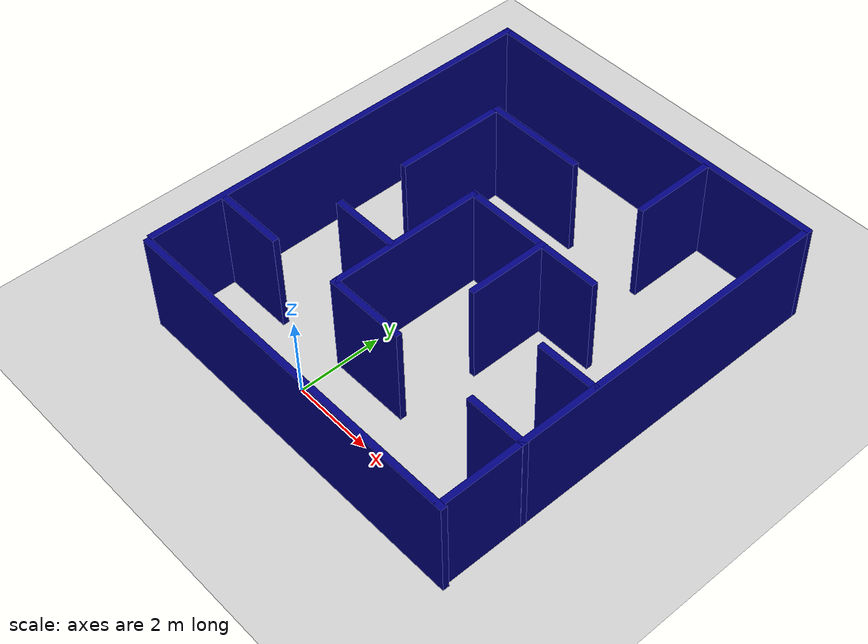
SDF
<sdf version="1.4">
 <world name="default">
  <light name="sun" type="directional">
   <pose>0 0 10 0 -0 0</pose>
   <diffuse>0.8 0.8 0.8 1</diffuse>
   <specular>0.2 0.2 0.2 1</specular>
   <attenuation>
    <range>1000</range>
    <constant>0.9</constant>
    <linear>0.01</linear>
    <quadratic>0.001</quadratic>
   </attenuation>
   <direction>0.5 0.1 -0.9</direction>
  </light>
  <model name="ground_plane">
   <static>1</static>
   <link name="link">
    <collision name="collision">
     <geometry><plane><normal>0 0 1</normal><size>100 100</size></plane></geometry>
     <surface><friction><ode><mu>100</mu><mu2>50</mu2></ode></friction></surface>
    </collision>
    <visual name="visual">
     <cast_shadows>0</cast_shadows>
     <geometry><plane><normal>0 0 1</normal><size>100 100</size></plane></geometry>
     <material>
      <script><uri>file://media/materials/scripts/gazebo.material</uri><name>Gazebo/Grey</name></script>
     </material>
    </visual>
    <velocity_decay><linear>0</linear><angular>0</angular></velocity_decay>
   </link>
  </model>
  <scene><ambient>0.4 0.4 0.4 1</ambient><background>0.7 0.7 0.7 1</background><shadows>0</shadows></scene>
  <physics type="ode">
   <max_step_size>0.01</max_step_size>
   <real_time_factor>1</real_time_factor>
   <real_time_update_rate>0</real_time_update_rate>
   <gravity>0 0 -9.8</gravity>
  </physics>
  <include><uri>model://ComplicatedMaze</uri><pose>1 4 0 0 -0 1.5708</pose></include>
 </world>
</sdf>

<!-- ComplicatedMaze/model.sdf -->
<sdf version='1.6'>
  <model name='ComplicatedMaze'>
    <link name='Wall_0'>
      <pose frame=''>-4.99265 -0.03059 0 0 0 -1.5708</pose>
      <self_collide>0</self_collide>
      <enable_wind>0</enable_wind>
      <kinematic>0</kinematic>
      <visual name='Wall_0_Visual'>
        <pose frame=''>0 0 1.25 0 -0 0</pose>
        <geometry>
          <box>
            <size>9 0.15 2.5</size>
          </box>
        </geometry>
        <material>
          <script>
            <uri>file://media/materials/scripts/gazebo.material</uri>
            <name>Gazebo/Grey</name>
          </script>
          <ambient>0 0 0.498039 1</ambient>
        </material>
        <meta>
          <layer>0</layer>
        </meta>
        <transparency>0</transparency>
        <cast_shadows>1</cast_shadows>
      </visual>
      <collision name='Wall_0_Collision'>
        <laser_retro>0</laser_retro>
        <max_contacts>10</max_contacts>
        <pose frame=''>0 0 1.25 0 -0 0</pose>
        <geometry>
          <box>
            <size>9 0.15 2.5</size>
          </box>
        </geometry>
        <surface>
          <friction>
            <ode>
              <mu>1</mu>
              <mu2>1</mu2>
              <fdir1>0 0 0</fdir1>
              <slip1>0</slip1>
              <slip2>0</slip2>
            </ode>
            <torsional>
              <coefficient>1</coefficient>
              <patch_radius>0</patch_radius>
              <surface_radius>0</surface_radius>
              <use_patch_radius>1</use_patch_radius>
              <ode>
                <slip>0</slip>
              </ode>
            </torsional>
          </friction>
          <bounce>
            <restitution_coefficient>0</restitution_coefficient>
            <threshold>1e+06</threshold>
          </bounce>
          <contact>
            <collide_without_contact>0</collide_without_contact>
            <collide_without_contact_bitmask>1</collide_without_contact_bitmask>
            <collide_bitmask>1</collide_bitmask>
            <ode>
              <soft_cfm>0</soft_cfm>
              <soft_erp>0.2</soft_erp>
              <kp>1e+13</kp>
              <kd>1</kd>
              <max_vel>0.01</max_vel>
              <min_depth>0</min_depth>
            </ode>
            <bullet>
              <split_impulse>1</split_impulse>
              <split_impulse_penetration_threshold>-0.01</split_impulse_penetration_threshold>
              <soft_cfm>0</soft_cfm>
              <soft_erp>0.2</soft_erp>
              <kp>1e+13</kp>
              <kd>1</kd>
            </bullet>
          </contact>
        </surface>
      </collision>
    </link>
    <link name='Wall_11'>
      <pose frame=''>-1.08192 0.977782 0 0 -0 0</pose>
      <self_collide>0</self_collide>
      <enable_wind>0</enable_wind>
      <kinematic>0</kinematic>
      <visual name='Wall_11_Visual'>
        <pose frame=''>0 0 1.25 0 -0 0</pose>
        <geometry>
          <box>
            <size>3.75 0.15 2.5</size>
          </box>
        </geometry>
        <material>
          <script>
            <uri>file://media/materials/scripts/gazebo.material</uri>
            <name>Gazebo/Grey</name>
          </script>
          <ambient>0 0 0.498039 1</ambient>
        </material>
        <meta>
          <layer>0</layer>
        </meta>
        <transparency>0</transparency>
        <cast_shadows>1</cast_shadows>
      </visual>
      <collision name='Wall_11_Collision'>
        <laser_retro>0</laser_retro>
        <max_contacts>10</max_contacts>
        <pose frame=''>0 0 1.25 0 -0 0</pose>
        <geometry>
          <box>
            <size>3.75 0.15 2.5</size>
          </box>
        </geometry>
        <surface>
          <friction>
            <ode>
              <mu>1</mu>
              <mu2>1</mu2>
              <fdir1>0 0 0</fdir1>
              <slip1>0</slip1>
              <slip2>0</slip2>
            </ode>
            <torsional>
              <coefficient>1</coefficient>
              <patch_radius>0</patch_radius>
              <surface_radius>0</surface_radius>
              <use_patch_radius>1</use_patch_radius>
              <ode>
                <slip>0</slip>
              </ode>
            </torsional>
          </friction>
          <bounce>
            <restitution_coefficient>0</restitution_coefficient>
            <threshold>1e+06</threshold>
          </bounce>
          <contact>
            <collide_without_contact>0</collide_without_contact>
            <collide_without_contact_bitmask>1</collide_without_contact_bitmask>
            <collide_bitmask>1</collide_bitmask>
            <ode>
              <soft_cfm>0</soft_cfm>
              <soft_erp>0.2</soft_erp>
              <kp>1e+13</kp>
              <kd>1</kd>
              <max_vel>0.01</max_vel>
              <min_depth>0</min_depth>
            </ode>
            <bullet>
              <split_impulse>1</split_impulse>
              <split_impulse_penetration_threshold>-0.01</split_impulse_penetration_threshold>
              <soft_cfm>0</soft_cfm>
              <soft_erp>0.2</soft_erp>
              <kp>1e+13</kp>
              <kd>1</kd>
            </bullet>
          </contact>
        </surface>
      </collision>
    </link>
    <link name='Wall_15'>
      <pose frame=''>3.93219 -1.70151 0 0 -0 0</pose>
      <self_collide>0</self_collide>
      <enable_wind>0</enable_wind>
      <kinematic>0</kinematic>
      <visual name='Wall_15_Visual'>
        <pose frame=''>0 0 1.25 0 -0 0</pose>
        <geometry>
          <box>
            <size>2 0.15 2.5</size>
          </box>
        </geometry>
        <material>
          <script>
            <uri>file://media/materials/scripts/gazebo.material</uri>
            <name>Gazebo/Grey</name>
          </script>
          <ambient>0 0 0.498039 1</ambient>
        </material>
        <meta>
          <layer>0</layer>
        </meta>
        <transparency>0</transparency>
        <cast_shadows>1</cast_shadows>
      </visual>
      <collision name='Wall_15_Collision'>
        <laser_retro>0</laser_retro>
        <max_contacts>10</max_contacts>
        <pose frame=''>0 0 1.25 0 -0 0</pose>
        <geometry>
          <box>
            <size>2 0.15 2.5</size>
          </box>
        </geometry>
        <surface>
          <friction>
            <ode>
              <mu>1</mu>
              <mu2>1</mu2>
              <fdir1>0 0 0</fdir1>
              <slip1>0</slip1>
              <slip2>0</slip2>
            </ode>
            <torsional>
              <coefficient>1</coefficient>
              <patch_radius>0</patch_radius>
              <surface_radius>0</surface_radius>
              <use_patch_radius>1</use_patch_radius>
              <ode>
                <slip>0</slip>
              </ode>
            </torsional>
          </friction>
          <bounce>
            <restitution_coefficient>0</restitution_coefficient>
            <threshold>1e+06</threshold>
          </bounce>
          <contact>
            <collide_without_contact>0</collide_without_contact>
            <collide_without_contact_bitmask>1</collide_without_contact_bitmask>
            <collide_bitmask>1</collide_bitmask>
            <ode>
              <soft_cfm>0</soft_cfm>
              <soft_erp>0.2</soft_erp>
              <kp>1e+13</kp>
              <kd>1</kd>
              <max_vel>0.01</max_vel>
              <min_depth>0</min_depth>
            </ode>
            <bullet>
              <split_impulse>1</split_impulse>
              <split_impulse_penetration_threshold>-0.01</split_impulse_penetration_threshold>
              <soft_cfm>0</soft_cfm>
              <soft_erp>0.2</soft_erp>
              <kp>1e+13</kp>
              <kd>1</kd>
            </bullet>
          </contact>
        </surface>
      </collision>
    </link>
    <link name='Wall_18'>
      <pose frame=''>2.93303 1.42277 0 0 0 -1.5708</pose>
      <self_collide>0</self_collide>
      <enable_wind>0</enable_wind>
      <kinematic>0</kinematic>
      <visual name='Wall_18_Visual'>
        <pose frame=''>0 0 1.25 0 -0 0</pose>
        <geometry>
          <box>
            <size>2.5 0.15 2.5</size>
          </box>
        </geometry>
        <material>
          <script>
            <uri>file://media/materials/scripts/gazebo.material</uri>
            <name>Gazebo/Grey</name>
          </script>
          <ambient>0 0 0.498039 1</ambient>
        </material>
        <meta>
          <layer>0</layer>
        </meta>
        <transparency>0</transparency>
        <cast_shadows>1</cast_shadows>
      </visual>
      <collision name='Wall_18_Collision'>
        <laser_retro>0</laser_retro>
        <max_contacts>10</max_contacts>
        <pose frame=''>0 0 1.25 0 -0 0</pose>
        <geometry>
          <box>
            <size>2.5 0.15 2.5</size>
          </box>
        </geometry>
        <surface>
          <friction>
            <ode>
              <mu>1</mu>
              <mu2>1</mu2>
              <fdir1>0 0 0</fdir1>
              <slip1>0</slip1>
              <slip2>0</slip2>
            </ode>
            <torsional>
              <coefficient>1</coefficient>
              <patch_radius>0</patch_radius>
              <surface_radius>0</surface_radius>
              <use_patch_radius>1</use_patch_radius>
              <ode>
                <slip>0</slip>
              </ode>
            </torsional>
          </friction>
          <bounce>
            <restitution_coefficient>0</restitution_coefficient>
            <threshold>1e+06</threshold>
          </bounce>
          <contact>
            <collide_without_contact>0</collide_without_contact>
            <collide_without_contact_bitmask>1</collide_without_contact_bitmask>
            <collide_bitmask>1</collide_bitmask>
            <ode>
              <soft_cfm>0</soft_cfm>
              <soft_erp>0.2</soft_erp>
              <kp>1e+13</kp>
              <kd>1</kd>
              <max_vel>0.01</max_vel>
              <min_depth>0</min_depth>
            </ode>
            <bullet>
              <split_impulse>1</split_impulse>
              <split_impulse_penetration_threshold>-0.01</split_impulse_penetration_threshold>
              <soft_cfm>0</soft_cfm>
              <soft_erp>0.2</soft_erp>
              <kp>1e+13</kp>
              <kd>1</kd>
            </bullet>
          </contact>
        </surface>
      </collision>
    </link>
    <link name='Wall_2'>
      <pose frame=''>-0.011565 -4.39441 0 0 -0 0</pose>
      <self_collide>0</self_collide>
      <enable_wind>0</enable_wind>
      <kinematic>0</kinematic>
      <visual name='Wall_2_Visual'>
        <pose frame=''>0 0 1.25 0 -0 0</pose>
        <geometry>
          <box>
            <size>10.1122 0.15 2.5</size>
          </box>
        </geometry>
        <material>
          <script>
            <uri>file://media/materials/scripts/gazebo.material</uri>
            <name>Gazebo/Grey</name>
          </script>
          <ambient>0 0 0.498039 1</ambient>
        </material>
        <meta>
          <layer>0</layer>
        </meta>
        <transparency>0</transparency>
        <cast_shadows>1</cast_shadows>
      </visual>
      <collision name='Wall_2_Collision'>
        <laser_retro>0</laser_retro>
        <max_contacts>10</max_contacts>
        <pose frame=''>0 0 1.25 0 -0 0</pose>
        <geometry>
          <box>
            <size>10.1122 0.15 2.5</size>
          </box>
        </geometry>
        <surface>
          <friction>
            <ode>
              <mu>1</mu>
              <mu2>1</mu2>
              <fdir1>0 0 0</fdir1>
              <slip1>0</slip1>
              <slip2>0</slip2>
            </ode>
            <torsional>
              <coefficient>1</coefficient>
              <patch_radius>0</patch_radius>
              <surface_radius>0</surface_radius>
              <use_patch_radius>1</use_patch_radius>
              <ode>
                <slip>0</slip>
              </ode>
            </torsional>
          </friction>
          <bounce>
            <restitution_coefficient>0</restitution_coefficient>
            <threshold>1e+06</threshold>
          </bounce>
          <contact>
            <collide_without_contact>0</collide_without_contact>
            <collide_without_contact_bitmask>1</collide_without_contact_bitmask>
            <collide_bitmask>1</collide_bitmask>
            <ode>
              <soft_cfm>0</soft_cfm>
              <soft_erp>0.2</soft_erp>
              <kp>1e+13</kp>
              <kd>1</kd>
              <max_vel>0.01</max_vel>
              <min_depth>0</min_depth>
            </ode>
            <bullet>
              <split_impulse>1</split_impulse>
              <split_impulse_penetration_threshold>-0.01</split_impulse_penetration_threshold>
              <soft_cfm>0</soft_cfm>
              <soft_erp>0.2</soft_erp>
              <kp>1e+13</kp>
              <kd>1</kd>
            </bullet>
          </contact>
        </surface>
      </collision>
    </link>
    <link name='Wall_20'>
      <pose frame=''>-1.11302 -3.67574 0 0 -0 1.5708</pose>
      <self_collide>0</self_collide>
      <enable_wind>0</enable_wind>
      <kinematic>0</kinematic>
      <visual name='Wall_20_Visual'>
        <pose frame=''>0 0 1.25 0 -0 0</pose>
        <geometry>
          <box>
            <size>1.5 0.15 2.5</size>
          </box>
        </geometry>
        <material>
          <script>
            <uri>file://media/materials/scripts/gazebo.material</uri>
            <name>Gazebo/Grey</name>
          </script>
          <ambient>0 0 0.498039 1</ambient>
        </material>
        <meta>
          <layer>0</layer>
        </meta>
        <transparency>0</transparency>
        <cast_shadows>1</cast_shadows>
      </visual>
      <collision name='Wall_20_Collision'>
        <laser_retro>0</laser_retro>
        <max_contacts>10</max_contacts>
        <pose frame=''>0 0 1.25 0 -0 0</pose>
        <geometry>
          <box>
            <size>1.5 0.15 2.5</size>
          </box>
        </geometry>
        <surface>
          <friction>
            <ode>
              <mu>1</mu>
              <mu2>1</mu2>
              <fdir1>0 0 0</fdir1>
              <slip1>0</slip1>
              <slip2>0</slip2>
            </ode>
            <torsional>
              <coefficient>1</coefficient>
              <patch_radius>0</patch_radius>
              <surface_radius>0</surface_radius>
              <use_patch_radius>1</use_patch_radius>
              <ode>
                <slip>0</slip>
              </ode>
            </torsional>
          </friction>
          <bounce>
            <restitution_coefficient>0</restitution_coefficient>
            <threshold>1e+06</threshold>
          </bounce>
          <contact>
            <collide_without_contact>0</collide_without_contact>
            <collide_without_contact_bitmask>1</collide_without_contact_bitmask>
            <collide_bitmask>1</collide_bitmask>
            <ode>
              <soft_cfm>0</soft_cfm>
              <soft_erp>0.2</soft_erp>
              <kp>1e+13</kp>
              <kd>1</kd>
              <max_vel>0.01</max_vel>
              <min_depth>0</min_depth>
            </ode>
            <bullet>
              <split_impulse>1</split_impulse>
              <split_impulse_penetration_threshold>-0.01</split_impulse_penetration_threshold>
              <soft_cfm>0</soft_cfm>
              <soft_erp>0.2</soft_erp>
              <kp>1e+13</kp>
              <kd>1</kd>
            </bullet>
          </contact>
        </surface>
      </collision>
    </link>
    <link name='Wall_3'>
      <pose frame=''>4.99265 0.03059 0 0 -0 1.5708</pose>
      <self_collide>0</self_collide>
      <enable_wind>0</enable_wind>
      <kinematic>0</kinematic>
      <visual name='Wall_3_Visual'>
        <pose frame=''>0 0 1.25 0 -0 0</pose>
        <geometry>
          <box>
            <size>9 0.15 2.5</size>
          </box>
        </geometry>
        <material>
          <script>
            <uri>file://media/materials/scripts/gazebo.material</uri>
            <name>Gazebo/Grey</name>
          </script>
          <ambient>0 0 0.498039 1</ambient>
        </material>
        <meta>
          <layer>0</layer>
        </meta>
        <transparency>0</transparency>
        <cast_shadows>1</cast_shadows>
      </visual>
      <collision name='Wall_3_Collision'>
        <laser_retro>0</laser_retro>
        <max_contacts>10</max_contacts>
        <pose frame=''>0 0 1.25 0 -0 0</pose>
        <geometry>
          <box>
            <size>9 0.15 2.5</size>
          </box>
        </geometry>
        <surface>
          <friction>
            <ode>
              <mu>1</mu>
              <mu2>1</mu2>
              <fdir1>0 0 0</fdir1>
              <slip1>0</slip1>
              <slip2>0</slip2>
            </ode>
            <torsional>
              <coefficient>1</coefficient>
              <patch_radius>0</patch_radius>
              <surface_radius>0</surface_radius>
              <use_patch_radius>1</use_patch_radius>
              <ode>
                <slip>0</slip>
              </ode>
            </torsional>
          </friction>
          <bounce>
            <restitution_coefficient>0</restitution_coefficient>
            <threshold>1e+06</threshold>
          </bounce>
          <contact>
            <collide_without_contact>0</collide_without_contact>
            <collide_without_contact_bitmask>1</collide_without_contact_bitmask>
            <collide_bitmask>1</collide_bitmask>
            <ode>
              <soft_cfm>0</soft_cfm>
              <soft_erp>0.2</soft_erp>
              <kp>1e+13</kp>
              <kd>1</kd>
              <max_vel>0.01</max_vel>
              <min_depth>0</min_depth>
            </ode>
            <bullet>
              <split_impulse>1</split_impulse>
              <split_impulse_penetration_threshold>-0.01</split_impulse_penetration_threshold>
              <soft_cfm>0</soft_cfm>
              <soft_erp>0.2</soft_erp>
              <kp>1e+13</kp>
              <kd>1</kd>
            </bullet>
          </contact>
        </surface>
      </collision>
    </link>
    <link name='Wall_31'>
      <pose frame=''>0.754182 -0.743046 0 0 0 -1.5708</pose>
      <self_collide>0</self_collide>
      <enable_wind>0</enable_wind>
      <kinematic>0</kinematic>
      <inertial>
        <inertia>
          <ixx>0</ixx>
          <ixy>0</ixy>
          <ixz>0</ixz>
          <iyy>0</iyy>
          <iyz>0</iyz>
          <izz>0</izz>
        </inertia>
        <mass>0</mass>
        <pose frame=''>0 0 0 0 -0 0</pose>
      </inertial>
      <visual name='Wall_31_Visual'>
        <pose frame=''>0 0 1.25 0 -0 0</pose>
        <geometry>
          <box>
            <size>3.61177 0.15 2.5</size>
          </box>
        </geometry>
        <material>
          <script>
            <uri>file://media/materials/scripts/gazebo.material</uri>
            <name>Gazebo/Grey</name>
          </script>
          <ambient>0 0 0.498039 1</ambient>
        </material>
        <meta>
          <layer>0</layer>
        </meta>
        <transparency>0</transparency>
        <cast_shadows>1</cast_shadows>
      </visual>
      <collision name='Wall_31_Collision'>
        <laser_retro>0</laser_retro>
        <max_contacts>10</max_contacts>
        <pose frame=''>0 0 1.25 0 -0 0</pose>
        <geometry>
          <box>
            <size>3.61177 0.15 2.5</size>
          </box>
        </geometry>
        <surface>
          <friction>
            <ode>
              <mu>1</mu>
              <mu2>1</mu2>
              <fdir1>0 0 0</fdir1>
              <slip1>0</slip1>
              <slip2>0</slip2>
            </ode>
            <torsional>
              <coefficient>1</coefficient>
              <patch_radius>0</patch_radius>
              <surface_radius>0</surface_radius>
              <use_patch_radius>1</use_patch_radius>
              <ode>
                <slip>0</slip>
              </ode>
            </torsional>
          </friction>
          <bounce>
            <restitution_coefficient>0</restitution_coefficient>
            <threshold>1e+06</threshold>
          </bounce>
          <contact>
            <collide_without_contact>0</collide_without_contact>
            <collide_without_contact_bitmask>1</collide_without_contact_bitmask>
            <collide_bitmask>1</collide_bitmask>
            <ode>
              <soft_cfm>0</soft_cfm>
              <soft_erp>0.2</soft_erp>
              <kp>1e+13</kp>
              <kd>1</kd>
              <max_vel>0.01</max_vel>
              <min_depth>0</min_depth>
            </ode>
            <bullet>
              <split_impulse>1</split_impulse>
              <split_impulse_penetration_threshold>-0.01</split_impulse_penetration_threshold>
              <soft_cfm>0</soft_cfm>
              <soft_erp>0.2</soft_erp>
              <kp>1e+13</kp>
              <kd>1</kd>
            </bullet>
          </contact>
        </surface>
      </collision>
    </link>
    <link name='Wall_35'>
      <pose frame=''>-1.4431 1.8149 0 0 0 -1.5708</pose>
      <self_collide>0</self_collide>
      <enable_wind>0</enable_wind>
      <kinematic>0</kinematic>
      <visual name='Wall_35_Visual'>
        <pose frame=''>0 0 1.25 0 -0 0</pose>
        <geometry>
          <box>
            <size>1.75 0.15 2.5</size>
          </box>
        </geometry>
        <material>
          <script>
            <uri>file://media/materials/scripts/gazebo.material</uri>
            <name>Gazebo/Grey</name>
          </script>
          <ambient>0 0 0.498039 1</ambient>
        </material>
        <meta>
          <layer>0</layer>
        </meta>
        <transparency>0</transparency>
        <cast_shadows>1</cast_shadows>
      </visual>
      <collision name='Wall_35_Collision'>
        <laser_retro>0</laser_retro>
        <max_contacts>10</max_contacts>
        <pose frame=''>0 0 1.25 0 -0 0</pose>
        <geometry>
          <box>
            <size>1.75 0.15 2.5</size>
          </box>
        </geometry>
        <surface>
          <friction>
            <ode>
              <mu>1</mu>
              <mu2>1</mu2>
              <fdir1>0 0 0</fdir1>
              <slip1>0</slip1>
              <slip2>0</slip2>
            </ode>
            <torsional>
              <coefficient>1</coefficient>
              <patch_radius>0</patch_radius>
              <surface_radius>0</surface_radius>
              <use_patch_radius>1</use_patch_radius>
              <ode>
                <slip>0</slip>
              </ode>
            </torsional>
          </friction>
          <bounce>
            <restitution_coefficient>0</restitution_coefficient>
            <threshold>1e+06</threshold>
          </bounce>
          <contact>
            <collide_without_contact>0</collide_without_contact>
            <collide_without_contact_bitmask>1</collide_without_contact_bitmask>
            <collide_bitmask>1</collide_bitmask>
            <ode>
              <soft_cfm>0</soft_cfm>
              <soft_erp>0.2</soft_erp>
              <kp>1e+13</kp>
              <kd>1</kd>
              <max_vel>0.01</max_vel>
              <min_depth>0</min_depth>
            </ode>
            <bullet>
              <split_impulse>1</split_impulse>
              <split_impulse_penetration_threshold>-0.01</split_impulse_penetration_threshold>
              <soft_cfm>0</soft_cfm>
              <soft_erp>0.2</soft_erp>
              <kp>1e+13</kp>
              <kd>1</kd>
            </bullet>
          </contact>
        </surface>
      </collision>
    </link>
    <link name='Wall_37'>
      <pose frame=''>-0.166212 -1.04522 0 0 -0 0</pose>
      <self_collide>0</self_collide>
      <enable_wind>0</enable_wind>
      <kinematic>0</kinematic>
      <visual name='Wall_37_Visual'>
        <pose frame=''>0 0 1.25 0 -0 0</pose>
        <geometry>
          <box>
            <size>2 0.15 2.5</size>
          </box>
        </geometry>
        <material>
          <script>
            <uri>file://media/materials/scripts/gazebo.material</uri>
            <name>Gazebo/Grey</name>
          </script>
          <ambient>0 0 0.498039 1</ambient>
        </material>
        <meta>
          <layer>0</layer>
        </meta>
        <transparency>0</transparency>
        <cast_shadows>1</cast_shadows>
      </visual>
      <collision name='Wall_37_Collision'>
        <laser_retro>0</laser_retro>
        <max_contacts>10</max_contacts>
        <pose frame=''>0 0 1.25 0 -0 0</pose>
        <geometry>
          <box>
            <size>2 0.15 2.5</size>
          </box>
        </geometry>
        <surface>
          <friction>
            <ode>
              <mu>1</mu>
              <mu2>1</mu2>
              <fdir1>0 0 0</fdir1>
              <slip1>0</slip1>
              <slip2>0</slip2>
            </ode>
            <torsional>
              <coefficient>1</coefficient>
              <patch_radius>0</patch_radius>
              <surface_radius>0</surface_radius>
              <use_patch_radius>1</use_patch_radius>
              <ode>
                <slip>0</slip>
              </ode>
            </torsional>
          </friction>
          <bounce>
            <restitution_coefficient>0</restitution_coefficient>
            <threshold>1e+06</threshold>
          </bounce>
          <contact>
            <collide_without_contact>0</collide_without_contact>
            <collide_without_contact_bitmask>1</collide_without_contact_bitmask>
            <collide_bitmask>1</collide_bitmask>
            <ode>
              <soft_cfm>0</soft_cfm>
              <soft_erp>0.2</soft_erp>
              <kp>1e+13</kp>
              <kd>1</kd>
              <max_vel>0.01</max_vel>
              <min_depth>0</min_depth>
            </ode>
            <bullet>
              <split_impulse>1</split_impulse>
              <split_impulse_penetration_threshold>-0.01</split_impulse_penetration_threshold>
              <soft_cfm>0</soft_cfm>
              <soft_erp>0.2</soft_erp>
              <kp>1e+13</kp>
              <kd>1</kd>
            </bullet>
          </contact>
        </surface>
      </collision>
    </link>
    <link name='Wall_38'>
      <pose frame=''>-3.10013 3.53872 0 0 -0 1.5708</pose>
      <self_collide>0</self_collide>
      <enable_wind>0</enable_wind>
      <kinematic>0</kinematic>
      <visual name='Wall_38_Visual'>
        <pose frame=''>0 0 1.25 0 -0 0</pose>
        <geometry>
          <box>
            <size>1.75 0.15 2.5</size>
          </box>
        </geometry>
        <material>
          <script>
            <uri>file://media/materials/scripts/gazebo.material</uri>
            <name>Gazebo/Grey</name>
          </script>
          <ambient>0 0 0.498039 1</ambient>
        </material>
        <meta>
          <layer>0</layer>
        </meta>
        <transparency>0</transparency>
        <cast_shadows>1</cast_shadows>
      </visual>
      <collision name='Wall_38_Collision'>
        <laser_retro>0</laser_retro>
        <max_contacts>10</max_contacts>
        <pose frame=''>0 0 1.25 0 -0 0</pose>
        <geometry>
          <box>
            <size>1.75 0.15 2.5</size>
          </box>
        </geometry>
        <surface>
          <friction>
            <ode>
              <mu>1</mu>
              <mu2>1</mu2>
              <fdir1>0 0 0</fdir1>
              <slip1>0</slip1>
              <slip2>0</slip2>
            </ode>
            <torsional>
              <coefficient>1</coefficient>
              <patch_radius>0</patch_radius>
              <surface_radius>0</surface_radius>
              <use_patch_radius>1</use_patch_radius>
              <ode>
                <slip>0</slip>
              </ode>
            </torsional>
          </friction>
          <bounce>
            <restitution_coefficient>0</restitution_coefficient>
            <threshold>1e+06</threshold>
          </bounce>
          <contact>
            <collide_without_contact>0</collide_without_contact>
            <collide_without_contact_bitmask>1</collide_without_contact_bitmask>
            <collide_bitmask>1</collide_bitmask>
            <ode>
              <soft_cfm>0</soft_cfm>
              <soft_erp>0.2</soft_erp>
              <kp>1e+13</kp>
              <kd>1</kd>
              <max_vel>0.01</max_vel>
              <min_depth>0</min_depth>
            </ode>
            <bullet>
              <split_impulse>1</split_impulse>
              <split_impulse_penetration_threshold>-0.01</split_impulse_penetration_threshold>
              <soft_cfm>0</soft_cfm>
              <soft_erp>0.2</soft_erp>
              <kp>1e+13</kp>
              <kd>1</kd>
            </bullet>
          </contact>
        </surface>
      </collision>
    </link>
    <link name='Wall_4'>
      <pose frame=''>0.067647 4.45559 0 0 -0 3.14159</pose>
      <self_collide>0</self_collide>
      <enable_wind>0</enable_wind>
      <kinematic>0</kinematic>
      <visual name='Wall_4_Visual'>
        <pose frame=''>0 0 1.25 0 -0 0</pose>
        <geometry>
          <box>
            <size>10 0.15 2.5</size>
          </box>
        </geometry>
        <material>
          <script>
            <uri>file://media/materials/scripts/gazebo.material</uri>
            <name>Gazebo/Grey</name>
          </script>
          <ambient>0 0 0.498039 1</ambient>
        </material>
        <meta>
          <layer>0</layer>
        </meta>
        <transparency>0</transparency>
        <cast_shadows>1</cast_shadows>
      </visual>
      <collision name='Wall_4_Collision'>
        <laser_retro>0</laser_retro>
        <max_contacts>10</max_contacts>
        <pose frame=''>0 0 1.25 0 -0 0</pose>
        <geometry>
          <box>
            <size>10 0.15 2.5</size>
          </box>
        </geometry>
        <surface>
          <friction>
            <ode>
              <mu>1</mu>
              <mu2>1</mu2>
              <fdir1>0 0 0</fdir1>
              <slip1>0</slip1>
              <slip2>0</slip2>
            </ode>
            <torsional>
              <coefficient>1</coefficient>
              <patch_radius>0</patch_radius>
              <surface_radius>0</surface_radius>
              <use_patch_radius>1</use_patch_radius>
              <ode>
                <slip>0</slip>
              </ode>
            </torsional>
          </friction>
          <bounce>
            <restitution_coefficient>0</restitution_coefficient>
            <threshold>1e+06</threshold>
          </bounce>
          <contact>
            <collide_without_contact>0</collide_without_contact>
            <collide_without_contact_bitmask>1</collide_without_contact_bitmask>
            <collide_bitmask>1</collide_bitmask>
            <ode>
              <soft_cfm>0</soft_cfm>
              <soft_erp>0.2</soft_erp>
              <kp>1e+13</kp>
              <kd>1</kd>
              <max_vel>0.01</max_vel>
              <min_depth>0</min_depth>
            </ode>
            <bullet>
              <split_impulse>1</split_impulse>
              <split_impulse_penetration_threshold>-0.01</split_impulse_penetration_threshold>
              <soft_cfm>0</soft_cfm>
              <soft_erp>0.2</soft_erp>
              <kp>1e+13</kp>
              <kd>1</kd>
            </bullet>
          </contact>
        </surface>
      </collision>
    </link>
    <link name='Wall_40'>
      <pose frame=''>1.6069 2.6149 0 0 -0 3.14159</pose>
      <self_collide>0</self_collide>
      <enable_wind>0</enable_wind>
      <kinematic>0</kinematic>
      <visual name='Wall_40_Visual'>
        <pose frame=''>0 0 1.25 0 -0 0</pose>
        <geometry>
          <box>
            <size>2.75 0.15 2.5</size>
          </box>
        </geometry>
        <material>
          <script>
            <uri>file://media/materials/scripts/gazebo.material</uri>
            <name>Gazebo/Grey</name>
          </script>
          <ambient>0 0 0.498039 1</ambient>
        </material>
        <meta>
          <layer>0</layer>
        </meta>
        <transparency>0</transparency>
        <cast_shadows>1</cast_shadows>
      </visual>
      <collision name='Wall_40_Collision'>
        <laser_retro>0</laser_retro>
        <max_contacts>10</max_contacts>
        <pose frame=''>0 0 1.25 0 -0 0</pose>
        <geometry>
          <box>
            <size>2.75 0.15 2.5</size>
          </box>
        </geometry>
        <surface>
          <friction>
            <ode>
              <mu>1</mu>
              <mu2>1</mu2>
              <fdir1>0 0 0</fdir1>
              <slip1>0</slip1>
              <slip2>0</slip2>
            </ode>
            <torsional>
              <coefficient>1</coefficient>
              <patch_radius>0</patch_radius>
              <surface_radius>0</surface_radius>
              <use_patch_radius>1</use_patch_radius>
              <ode>
                <slip>0</slip>
              </ode>
            </torsional>
          </friction>
          <bounce>
            <restitution_coefficient>0</restitution_coefficient>
            <threshold>1e+06</threshold>
          </bounce>
          <contact>
            <collide_without_contact>0</collide_without_contact>
            <collide_without_contact_bitmask>1</collide_without_contact_bitmask>
            <collide_bitmask>1</collide_bitmask>
            <ode>
              <soft_cfm>0</soft_cfm>
              <soft_erp>0.2</soft_erp>
              <kp>1e+13</kp>
              <kd>1</kd>
              <max_vel>0.01</max_vel>
              <min_depth>0</min_depth>
            </ode>
            <bullet>
              <split_impulse>1</split_impulse>
              <split_impulse_penetration_threshold>-0.01</split_impulse_penetration_threshold>
              <soft_cfm>0</soft_cfm>
              <soft_erp>0.2</soft_erp>
              <kp>1e+13</kp>
              <kd>1</kd>
            </bullet>
          </contact>
        </surface>
      </collision>
    </link>
    <link name='Wall_6'>
      <pose frame=''>-2.9431 0.044839 0 0 0 -1.5708</pose>
      <self_collide>0</self_collide>
      <enable_wind>0</enable_wind>
      <kinematic>0</kinematic>
      <visual name='Wall_6_Visual'>
        <pose frame=''>0 0 1.25 0 -0 0</pose>
        <geometry>
          <box>
            <size>2 0.15 2.5</size>
          </box>
        </geometry>
        <material>
          <script>
            <uri>file://media/materials/scripts/gazebo.material</uri>
            <name>Gazebo/Grey</name>
          </script>
          <ambient>0 0 0.498039 1</ambient>
        </material>
        <meta>
          <layer>0</layer>
        </meta>
        <transparency>0</transparency>
        <cast_shadows>1</cast_shadows>
      </visual>
      <collision name='Wall_6_Collision'>
        <laser_retro>0</laser_retro>
        <max_contacts>10</max_contacts>
        <pose frame=''>0 0 1.25 0 -0 0</pose>
        <geometry>
          <box>
            <size>2 0.15 2.5</size>
          </box>
        </geometry>
        <surface>
          <friction>
            <ode>
              <mu>1</mu>
              <mu2>1</mu2>
              <fdir1>0 0 0</fdir1>
              <slip1>0</slip1>
              <slip2>0</slip2>
            </ode>
            <torsional>
              <coefficient>1</coefficient>
              <patch_radius>0</patch_radius>
              <surface_radius>0</surface_radius>
              <use_patch_radius>1</use_patch_radius>
              <ode>
                <slip>0</slip>
              </ode>
            </torsional>
          </friction>
          <bounce>
            <restitution_coefficient>0</restitution_coefficient>
            <threshold>1e+06</threshold>
          </bounce>
          <contact>
            <collide_without_contact>0</collide_without_contact>
            <collide_without_contact_bitmask>1</collide_without_contact_bitmask>
            <collide_bitmask>1</collide_bitmask>
            <ode>
              <soft_cfm>0</soft_cfm>
              <soft_erp>0.2</soft_erp>
              <kp>1e+13</kp>
              <kd>1</kd>
              <max_vel>0.01</max_vel>
              <min_depth>0</min_depth>
            </ode>
            <bullet>
              <split_impulse>1</split_impulse>
              <split_impulse_penetration_threshold>-0.01</split_impulse_penetration_threshold>
              <soft_cfm>0</soft_cfm>
              <soft_erp>0.2</soft_erp>
              <kp>1e+13</kp>
              <kd>1</kd>
            </bullet>
          </contact>
        </surface>
      </collision>
    </link>
    <link name='Wall_9'>
      <pose frame=''>-2.9723 -3.72364 0 0 -0 1.5708</pose>
      <self_collide>0</self_collide>
      <enable_wind>0</enable_wind>
      <kinematic>0</kinematic>
      <visual name='Wall_9_Visual'>
        <pose frame=''>0 0 1.25 0 -0 0</pose>
        <geometry>
          <box>
            <size>1.5 0.15 2.5</size>
          </box>
        </geometry>
        <material>
          <script>
            <uri>file://media/materials/scripts/gazebo.material</uri>
            <name>Gazebo/Grey</name>
          </script>
          <ambient>0 0 0.498039 1</ambient>
        </material>
        <meta>
          <layer>0</layer>
        </meta>
        <transparency>0</transparency>
        <cast_shadows>1</cast_shadows>
      </visual>
      <collision name='Wall_9_Collision'>
        <laser_retro>0</laser_retro>
        <max_contacts>10</max_contacts>
        <pose frame=''>0 0 1.25 0 -0 0</pose>
        <geometry>
          <box>
            <size>1.5 0.15 2.5</size>
          </box>
        </geometry>
        <surface>
          <friction>
            <ode>
              <mu>1</mu>
              <mu2>1</mu2>
              <fdir1>0 0 0</fdir1>
              <slip1>0</slip1>
              <slip2>0</slip2>
            </ode>
            <torsional>
              <coefficient>1</coefficient>
              <patch_radius>0</patch_radius>
              <surface_radius>0</surface_radius>
              <use_patch_radius>1</use_patch_radius>
              <ode>
                <slip>0</slip>
              </ode>
            </torsional>
          </friction>
          <bounce>
            <restitution_coefficient>0</restitution_coefficient>
            <threshold>1e+06</threshold>
          </bounce>
          <contact>
            <collide_without_contact>0</collide_without_contact>
            <collide_without_contact_bitmask>1</collide_without_contact_bitmask>
            <collide_bitmask>1</collide_bitmask>
            <ode>
              <soft_cfm>0</soft_cfm>
              <soft_erp>0.2</soft_erp>
              <kp>1e+13</kp>
              <kd>1</kd>
              <max_vel>0.01</max_vel>
              <min_depth>0</min_depth>
            </ode>
            <bullet>
              <split_impulse>1</split_impulse>
              <split_impulse_penetration_threshold>-0.01</split_impulse_penetration_threshold>
              <soft_cfm>0</soft_cfm>
              <soft_erp>0.2</soft_erp>
              <kp>1e+13</kp>
              <kd>1</kd>
            </bullet>
          </contact>
        </surface>
      </collision>
    </link>
    <model name='Target'>
      <link name='green'>
        <pose frame=''>0 0 0 0 -0 0</pose>
        <self_collide>0</self_collide>
        <enable_wind>0</enable_wind>
        <kinematic>0</kinematic>
        <visual name='visual'>
          <geometry>
            <cylinder>
              <radius>0.24661</radius>
              <length>0.05</length>
            </cylinder>
          </geometry>
          <material>
            <script>
              <uri>file://media/materials/scripts/gazebo.material</uri>
              <name>Gazebo/Green</name>
            </script>
            <ambient>1 1 1 1</ambient>
          </material>
          <cast_shadows>0</cast_shadows>
          <transparency>0</transparency>
          <pose frame=''>0 0 0 0 -0 0</pose>
        </visual>
      </link>
      <link name='red'>
        <pose frame=''>0 0 0 0 -0 0</pose>
        <self_collide>0</self_collide>
        <enable_wind>0</enable_wind>
        <kinematic>0</kinematic>
        <visual name='visual'>
          <geometry>
            <cylinder>
              <radius>0.806853</radius>
              <length>0.03</length>
            </cylinder>
          </geometry>
          <material>
            <script>
              <uri>file://media/materials/scripts/gazebo.material</uri>
              <name>Gazebo/Red</name>
            </script>
            <ambient>1 1 1 1</ambient>
          </material>
          <cast_shadows>0</cast_shadows>
          <transparency>0</transparency>
          <pose frame=''>0 0 0 0 -0 0</pose>
        </visual>
      </link>
      <link name='yellow'>
        <pose frame=''>0 0 0 0 -0 0</pose>
        <self_collide>0</self_collide>
        <enable_wind>0</enable_wind>
        <kinematic>0</kinematic>
        <visual name='visual'>
          <geometry>
            <cylinder>
              <radius>0.496108</radius>
              <length>0.04</length>
            </cylinder>
          </geometry>
          <material>
            <script>
              <uri>file://media/materials/scripts/gazebo.material</uri>
              <name>Gazebo/Yellow</name>
            </script>
            <ambient>1 1 1 1</ambient>
          </material>
          <cast_shadows>0</cast_shadows>
          <transparency>0</transparency>
          <pose frame=''>0 0 0 0 -0 0</pose>
        </visual>
      </link>
      <static>1</static>
      <allow_auto_disable>1</allow_auto_disable>
      <pose frame=''>3.94926 3.32857 0 0 -0 0</pose>
    </model>
    <static>1</static>
    <allow_auto_disable>1</allow_auto_disable>
  </model>
</sdf>
